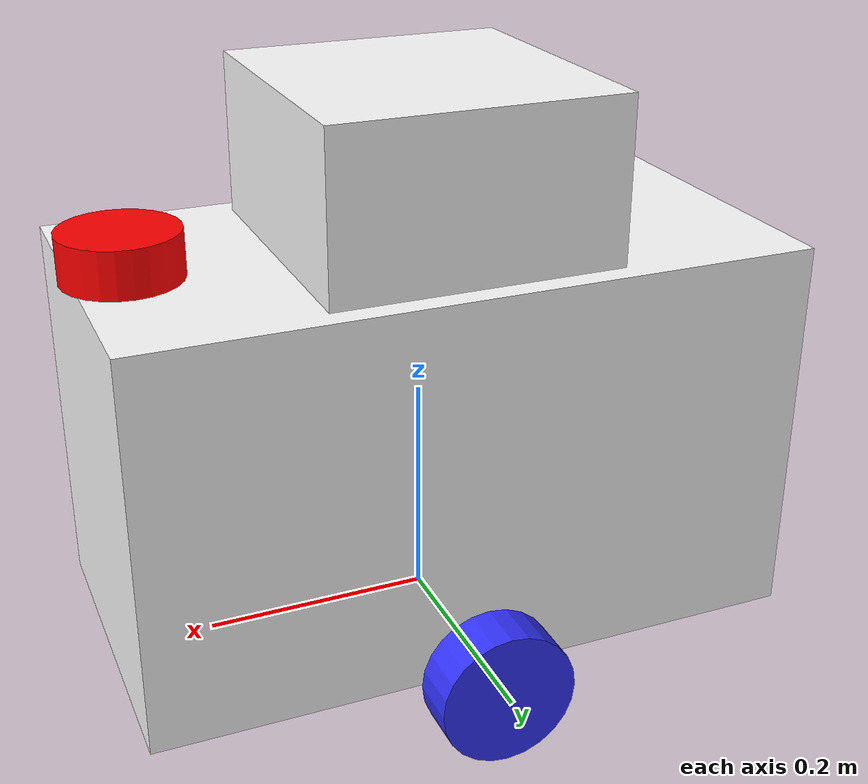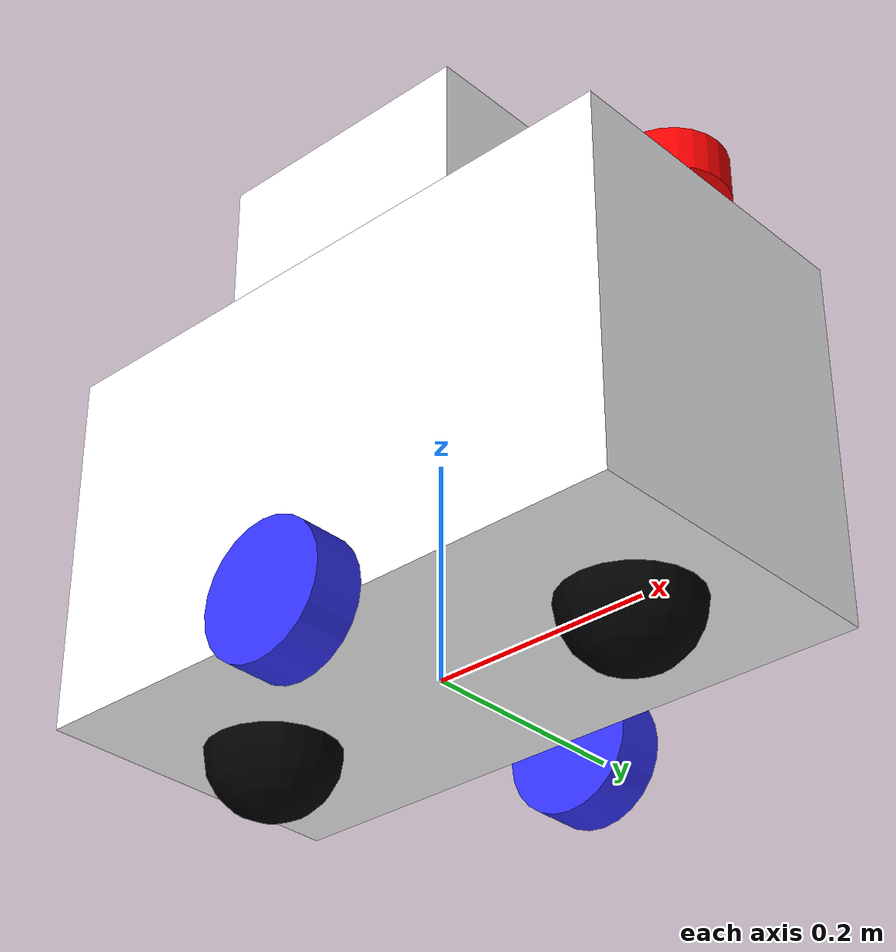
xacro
<?xml version="1.0"?>
<robot xmlns:xacro="http://www.ros.org/wiki/xacro"  name="robot">

    <xacro:arg name="use_ros2_control" default="true"/>
    <xacro:arg name="sim_mode" default="false"/>

    <xacro:include filename="robot_core.xacro"/>

    <xacro:if value="$(arg use_ros2_control)">
        <xacro:include filename="ros2_control.xacro"/>
    </xacro:if>
    <xacro:unless value="$(arg use_ros2_control)">
        <xacro:include filename="gazebo_control.xacro"/>
    </xacro:unless>

    <xacro:include filename="lidar.xacro"/>

</robot>

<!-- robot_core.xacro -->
<robot xmlns:xacro="http://www.ros.org/wiki/xacro">

    <xacro:include filename="inertial_macros.xacro"/>

    <material name="white">
        <color rgba="1 1 1 1"/>
    </material>

    <material name="orange">
        <color rgba="1 0.3 0.1 1"/>
    </material>

    <material name="blue">
        <color rgba="0.2 0.2 1 1"/>
    </material>

    <material name="black">
        <color rgba="0 0 0 1"/>
    </material>

    <material name="red">
        <color rgba="1 0 0 1"/>
    </material>

    <!-- BASE LINK -->

    <link name="base_link">

    </link>

    <!-- BASE_FOOTPRINT LINK -->

    <joint name="base_footprint_link" type="fixed">
        <parent link="base_link"/>
        <child link="base_footprint"/>
        <origin xyz="0 0 0" rpy-="0 0 0"/>
    </joint>

    <link name="base_footprint">
    </link>

    <!-- CHASSIS LINK -->

    <joint name="chassis_joint" type="fixed">
        <parent link="base_link"/>
        <child link="chassis"/>
        <origin xyz="-0.29 0 0"/>
    </joint>

    <link name="chassis">
        <visual>
            <origin xyz="0.29 0 0.17"/>
            <geometry>
                <box size="0.58 0.3 0.34"/>
            </geometry>
            <material name="white"/>
        </visual>
        <collision>
            <origin xyz="0.29 0 0.17"/>
            <geometry>
                <box size="0.58 0.3 0.34"/>
            </geometry>
        </collision>
        <xacro:inertial_box mass="7" x="0.58" y="0.3" z="0.34">
            <origin xyz="0.29 0 0.17" rpy="0 0 0"/>
        </xacro:inertial_box>
    </link>

    <gazebo reference="chassis">
        <material>Gazebo/White</material>
    </gazebo>

    <!-- TOP CHASSIS LINK -->

    <joint name="top_chassis_joint" type="fixed">
        <parent link="base_link"/>
        <child link="top_chassis"/>
        <origin xyz="0 0 0.34"/>
    </joint>

    <link name="top_chassis">
        <visual>
            <origin xyz="0 0 0.068"/>
            <geometry>
                <box size="0.25 0.26 0.145"/>
            </geometry>
            <material name="white"/>
        </visual>
        <collision>
            <origin xyz="0 0 0.068"/>
            <geometry>
                <box size="0.25 0.26 0.145"/>
            </geometry>
            <material name="white"/>
        </collision>
        <xacro:inertial_box mass="0.5" x="0.25" y="0.26" z="0.145">
            <origin xyz="0 0 0.068" rpy="0 0 0"/>
        </xacro:inertial_box>
    </link>

    <gazebo reference="top_chassis_joint">
        <material>Gazebo/White</material>
    </gazebo>

    <!-- LEFT WHEEL LINK -->

    <joint name="left_wheel_joint" type="continuous">
        <parent link="base_link"/>
        <child link="left_wheel"/>
        <origin xyz="0 0.175 0" rpy="-${pi/2} 0 0"/>
        <axis xyz="0 0 1"/>
    </joint>

    <link name="left_wheel">
        <visual>
            <geometry>
                <cylinder radius="0.06" length="0.045"/>
            </geometry>
            <material name="blue"/>
        </visual>
        <collision>
            <geometry>
                <cylinder radius="0.06" length="0.045"/>
            </geometry>
        </collision>
        <xacro:inertial_cylinder mass="0.1" length="0.045" radius="0.06">
            <origin xyz="0 0 0" rpy="0 0 0"/>
        </xacro:inertial_cylinder>
    </link>

    <gazebo reference="left_wheel">
        <material>Gazebo/Blue</material>
    </gazebo>

    <!-- RIGHT WHEEL LINK -->

    <joint name="right_wheel_joint" type="continuous">
        <parent link="base_link"/>
        <child link="right_wheel"/>
        <origin xyz="0 -0.175 0" rpy="${pi/2} 0 0"/>
        <axis xyz="0 0 -1"/>
    </joint>

    <link name="right_wheel">
        <visual>
            <geometry>
                    <cylinder radius="0.06" length="0.045"/>
            </geometry>
            <material name="blue"/>
        </visual>
        <collision>
            <geometry>
                    <cylinder radius="0.06" length="0.045"/>
            </geometry>
        </collision>
        <xacro:inertial_cylinder mass="0.1" length="0.045" radius="0.06">
            <origin xyz="0 0 0" rpy="0 0 0"/>
        </xacro:inertial_cylinder>
    </link>

    <gazebo reference="right_wheel">
        <material>Gazebo/Blue</material>
    </gazebo>

    <!-- FRONT CASTER WHEEL LINK -->

    <joint name="front_caster_joint" type="fixed">
        <parent link="chassis"/>
        <child link="front_caster_wheel"/>
        <origin xyz="0.48 0 0"/>
    </joint>

    <link name="front_caster_wheel">
        <visual>
            <geometry>
                <sphere radius="0.059"/>
            </geometry>
            <material name="black"/>
        </visual>
        <collision>
            <geometry>
                <sphere radius="0.059"/>
            </geometry>
        </collision>
        <xacro:inertial_sphere mass="0.1" radius="0.06">
            <origin xyz="0 0 0" rpy="0 0 0"/>
        </xacro:inertial_sphere>
    </link>

    <gazebo reference="front_caster_wheel">
        <material>Gazebo/Black</material>
        <mu1 value="0.001"/>
        <mu2 value="0.001"/>
    </gazebo>

    <!-- BACK CASTER WHEEL LINK -->

    <joint name="back_caster_joint" type="fixed">
        <parent link="chassis"/>
        <child link="back_caster_wheel"/>
        <origin xyz="0.1 0 0"/>
    </joint>

    <link name="back_caster_wheel">
        <visual>
            <geometry>
                <sphere radius="0.059"/>
            </geometry>
            <material name="black"/>
        </visual>
        <collision>
            <geometry>
                <sphere radius="0.059"/>
            </geometry>
        </collision>
    </link>

    <gazebo reference="back_caster_wheel">
        <material>Gazebo/Black</material>
        <mu1 value="0.001"/>
        <mu2 value="0.001"/>
    </gazebo>

</robot>

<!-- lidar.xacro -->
<robot xmlns:xacro="http://www.ros.org/wiki/xacro" >

    <joint name="laser_joint" type="fixed">
        <parent link="base_link"/>
        <child link="laser_frame"/>
        <origin xyz="0.25 0 0.36" rpy="0 0 0"/>
    </joint>

    <link name="laser_frame">
        <visual>
            <geometry>
                <cylinder radius="0.05" length="0.04"/>
            </geometry>
            <material name="red"/>
        </visual>
        <collision>
            <geometry>
                <cylinder radius="0.05" length="0.04"/>
            </geometry>
        </collision>
        <xacro:inertial_cylinder mass="0.1" length="0.04" radius="0.05">
            <origin xyz="0 0 0" rpy="0 0 0"/>
        </xacro:inertial_cylinder>
    </link>

    <gazebo reference="laser_frame">
        <material>Gazebo/Red</material>

        <sensor name="laser" type="ray">
            <pose> 0 0 0 0 0 0 </pose>
            <visualize>true</visualize>
            <update_rate>10</update_rate>
            <ray>
                <scan>
                    <horizontal>
                        <samples>360</samples>
                        <min_angle>-2.09</min_angle>
                        <max_angle>2.09</max_angle>
                    </horizontal>
                </scan>
                <range>
                    <min>0.3</min>
                    <max>25</max>
                </range>
            </ray>
            <plugin name="laser_controller" filename="libgazebo_ros_ray_sensor.so">
                <ros>
                    <argument>~/out:=scan</argument>
                </ros>
                <output_type>sensor_msgs/LaserScan</output_type>
                <frame_name>laser_frame</frame_name>
            </plugin>
        </sensor>
    </gazebo>

</robot>
